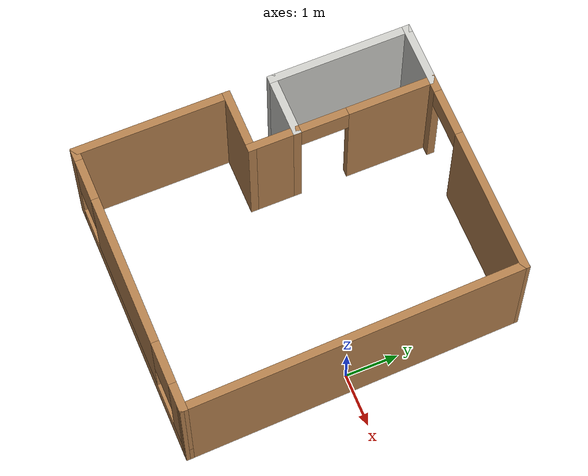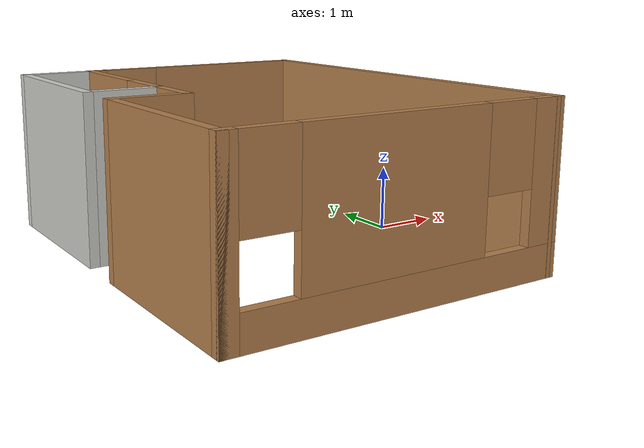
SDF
<?xml version='1.0'?>
<sdf version='1.7'>
  <model name='house'>
    <pose>-2.24196 0.03349 0 0 -0 0</pose>
    <link name='Wall_31'>
      <collision name='Wall_31_Collision'>
        <geometry>
          <box>
            <size>1.25 0.15 2.5</size>
          </box>
        </geometry>
        <pose>0 0 1.25 0 -0 0</pose>
      </collision>
      <visual name='Wall_31_Visual'>
        <pose>0 0 1.25 0 -0 0</pose>
        <geometry>
          <box>
            <size>1.25 0.15 2.5</size>
          </box>
        </geometry>
        <material>
          <script>
            <uri>file://media/materials/scripts/gazebo.material</uri>
            <name>Gazebo/CeilingTiled</name>
          </script>
          <ambient>1 1 1 1</ambient>
        </material>
        <meta>
          <layer>0</layer>
        </meta>
      </visual>
      <pose>-2.00088 3.15 0 0 -0 3.14159</pose>
    </link>
    <link name='Wall_32'>
      <collision name='Wall_32_Collision'>
        <geometry>
          <box>
            <size>2.75 0.15 2.5</size>
          </box>
        </geometry>
        <pose>0 0 1.25 0 -0 0</pose>
      </collision>
      <visual name='Wall_32_Visual'>
        <pose>0 0 1.25 0 -0 0</pose>
        <geometry>
          <box>
            <size>2.75 0.15 2.5</size>
          </box>
        </geometry>
        <material>
          <script>
            <uri>file://media/materials/scripts/gazebo.material</uri>
            <name>Gazebo/CeilingTiled</name>
          </script>
          <ambient>1 1 1 1</ambient>
        </material>
        <meta>
          <layer>0</layer>
        </meta>
      </visual>
      <pose>-2.55088 1.85 0 0 -0 -1.5708</pose>
    </link>
    <link name='Wall_33'>
      <collision name='Wall_33_Collision'>
        <geometry>
          <box>
            <size>1.25 0.15 2.5</size>
          </box>
        </geometry>
        <pose>0 0 1.25 0 -0 0</pose>
      </collision>
      <visual name='Wall_33_Visual'>
        <pose>0 0 1.25 0 -0 0</pose>
        <geometry>
          <box>
            <size>1.25 0.15 2.5</size>
          </box>
        </geometry>
        <material>
          <script>
            <uri>file://media/materials/scripts/gazebo.material</uri>
            <name>Gazebo/CeilingTiled</name>
          </script>
          <ambient>1 1 1 1</ambient>
        </material>
        <meta>
          <layer>0</layer>
        </meta>
      </visual>
      <pose>-2.00088 0.55 0 0 -0 0</pose>
    </link>
    <link name='Wall_34'>
      <collision name='Wall_34_Collision'>
        <geometry>
          <box>
            <size>1 0.15 2.5</size>
          </box>
        </geometry>
        <pose>0 0 1.25 0 -0 0</pose>
      </collision>
      <visual name='Wall_34_Visual'>
        <pose>0 0 1.25 0 -0 0</pose>
        <geometry>
          <box>
            <size>1 0.15 2.5</size>
          </box>
        </geometry>
        <material>
          <script>
            <uri>file://media/materials/scripts/gazebo.material</uri>
            <name>Gazebo/Wood</name>
          </script>
          <ambient>1 1 1 1</ambient>
        </material>
        <meta>
          <layer>0</layer>
        </meta>
      </visual>
      <pose>-1.45088 0.125 0 0 -0 -1.5708</pose>
    </link>
    <link name='Wall_35'>
      <collision name='Wall_35_Collision'>
        <geometry>
          <box>
            <size>1.25 0.15 2.5</size>
          </box>
        </geometry>
        <pose>0 0 1.25 0 -0 0</pose>
      </collision>
      <visual name='Wall_35_Visual'>
        <pose>0 0 1.25 0 -0 0</pose>
        <geometry>
          <box>
            <size>1.25 0.15 2.5</size>
          </box>
        </geometry>
        <material>
          <script>
            <uri>file://media/materials/scripts/gazebo.material</uri>
            <name>Gazebo/Wood</name>
          </script>
          <ambient>1 1 1 1</ambient>
        </material>
        <meta>
          <layer>0</layer>
        </meta>
      </visual>
      <pose>-2.00088 -0.3 0 0 -0 3.14159</pose>
    </link>
    <link name='Wall_37'>
      <collision name='Wall_37_Collision'>
        <geometry>
          <box>
            <size>3 0.15 2.5</size>
          </box>
        </geometry>
        <pose>0 0 1.25 0 -0 0</pose>
      </collision>
      <visual name='Wall_37_Visual'>
        <pose>0 0 1.25 0 -0 0</pose>
        <geometry>
          <box>
            <size>3 0.15 2.5</size>
          </box>
        </geometry>
        <material>
          <script>
            <uri>file://media/materials/scripts/gazebo.material</uri>
            <name>Gazebo/Wood</name>
          </script>
          <ambient>1 1 1 1</ambient>
        </material>
        <meta>
          <layer>0</layer>
        </meta>
      </visual>
      <pose>-2.55088 -1.725 0 0 -0 -1.5708</pose>
    </link>
    <link name='Wall_47'>
      <pose>-0.000882 -3.15 0 0 -0 0</pose>
      <visual name='Wall_47_Visual_0'>
        <pose>-2.49434 0 1.25 0 -0 0</pose>
        <geometry>
          <box>
            <size>0.261327 0.15 2.5</size>
          </box>
        </geometry>
        <material>
          <script>
            <uri>file://media/materials/scripts/gazebo.material</uri>
            <name>Gazebo/Wood</name>
          </script>
          <ambient>1 1 1 1</ambient>
        </material>
        <meta>
          <layer>0</layer>
        </meta>
      </visual>
      <collision name='Wall_47_Collision_0'>
        <geometry>
          <box>
            <size>0.261327 0.15 2.5</size>
          </box>
        </geometry>
        <pose>-2.49434 0 1.25 0 -0 0</pose>
      </collision>
      <visual name='Wall_47_Visual_1'>
        <pose>0.130664 0 0.25 0 -0 0</pose>
        <geometry>
          <box>
            <size>4.98867 0.15 0.5</size>
          </box>
        </geometry>
        <material>
          <script>
            <uri>file://media/materials/scripts/gazebo.material</uri>
            <name>Gazebo/Wood</name>
          </script>
          <ambient>1 1 1 1</ambient>
        </material>
        <meta>
          <layer>0</layer>
        </meta>
      </visual>
      <collision name='Wall_47_Collision_1'>
        <geometry>
          <box>
            <size>4.98867 0.15 0.5</size>
          </box>
        </geometry>
        <pose>0.130664 0 0.25 0 -0 0</pose>
      </collision>
      <visual name='Wall_47_Visual_2'>
        <pose>-0.135961 0 1.5 0 -0 0</pose>
        <geometry>
          <box>
            <size>2.85542 0.15 2</size>
          </box>
        </geometry>
        <material>
          <script>
            <uri>file://media/materials/scripts/gazebo.material</uri>
            <name>Gazebo/Wood</name>
          </script>
          <ambient>1 1 1 1</ambient>
        </material>
        <meta>
          <layer>0</layer>
        </meta>
      </visual>
      <collision name='Wall_47_Collision_2'>
        <geometry>
          <box>
            <size>2.85542 0.15 2</size>
          </box>
        </geometry>
        <pose>-0.135961 0 1.5 0 -0 0</pose>
      </collision>
      <visual name='Wall_47_Visual_3'>
        <pose>2.35838 0 1.5 0 -0 0</pose>
        <geometry>
          <box>
            <size>0.533249 0.15 2</size>
          </box>
        </geometry>
        <material>
          <script>
            <uri>file://media/materials/scripts/gazebo.material</uri>
            <name>Gazebo/Wood</name>
          </script>
          <ambient>1 1 1 1</ambient>
        </material>
        <meta>
          <layer>0</layer>
        </meta>
      </visual>
      <collision name='Wall_47_Collision_3'>
        <geometry>
          <box>
            <size>0.533249 0.15 2</size>
          </box>
        </geometry>
        <pose>2.35838 0 1.5 0 -0 0</pose>
      </collision>
      <visual name='Wall_47_Visual_4'>
        <pose>-1.96367 0 1.9 0 -0 0</pose>
        <geometry>
          <box>
            <size>0.8 0.15 1.2</size>
          </box>
        </geometry>
        <material>
          <script>
            <uri>file://media/materials/scripts/gazebo.material</uri>
            <name>Gazebo/Wood</name>
          </script>
          <ambient>1 1 1 1</ambient>
        </material>
        <meta>
          <layer>0</layer>
        </meta>
      </visual>
      <collision name='Wall_47_Collision_4'>
        <geometry>
          <box>
            <size>0.8 0.15 1.2</size>
          </box>
        </geometry>
        <pose>-1.96367 0 1.9 0 -0 0</pose>
      </collision>
      <visual name='Wall_47_Visual_5'>
        <pose>1.69175 0 1.9 0 -0 0</pose>
        <geometry>
          <box>
            <size>0.8 0.15 1.2</size>
          </box>
        </geometry>
        <material>
          <script>
            <uri>file://media/materials/scripts/gazebo.material</uri>
            <name>Gazebo/Wood</name>
          </script>
          <ambient>1 1 1 1</ambient>
        </material>
        <meta>
          <layer>0</layer>
        </meta>
      </visual>
      <collision name='Wall_47_Collision_5'>
        <geometry>
          <box>
            <size>0.8 0.15 1.2</size>
          </box>
        </geometry>
        <pose>1.69175 0 1.9 0 -0 0</pose>
      </collision>
    </link>
    <link name='Wall_52'>
      <pose>0.474118 3.15 0 0 -0 0</pose>
      <visual name='Wall_52_Visual_0'>
        <pose>-1.84093 0 1.25 0 -0 0</pose>
        <geometry>
          <box>
            <size>0.318142 0.15 2.5</size>
          </box>
        </geometry>
        <material>
          <script>
            <uri>file://media/materials/scripts/gazebo.material</uri>
            <name>Gazebo/Wood</name>
          </script>
          <ambient>1 1 1 1</ambient>
        </material>
        <meta>
          <layer>0</layer>
        </meta>
      </visual>
      <collision name='Wall_52_Collision_0'>
        <geometry>
          <box>
            <size>0.318142 0.15 2.5</size>
          </box>
        </geometry>
        <pose>-1.84093 0 1.25 0 -0 0</pose>
      </collision>
      <visual name='Wall_52_Visual_1'>
        <pose>0.609071 0 1.25 0 -0 0</pose>
        <geometry>
          <box>
            <size>2.78186 0.15 2.5</size>
          </box>
        </geometry>
        <material>
          <script>
            <uri>file://media/materials/scripts/gazebo.material</uri>
            <name>Gazebo/Wood</name>
          </script>
          <ambient>1 1 1 1</ambient>
        </material>
        <meta>
          <layer>0</layer>
        </meta>
      </visual>
      <collision name='Wall_52_Collision_1'>
        <geometry>
          <box>
            <size>2.78186 0.15 2.5</size>
          </box>
        </geometry>
        <pose>0.609071 0 1.25 0 -0 0</pose>
      </collision>
      <visual name='Wall_52_Visual_2'>
        <pose>-1.23186 0 2.25 0 -0 0</pose>
        <geometry>
          <box>
            <size>0.9 0.15 0.5</size>
          </box>
        </geometry>
        <material>
          <script>
            <uri>file://media/materials/scripts/gazebo.material</uri>
            <name>Gazebo/Wood</name>
          </script>
          <ambient>1 1 1 1</ambient>
        </material>
        <meta>
          <layer>0</layer>
        </meta>
      </visual>
      <collision name='Wall_52_Collision_2'>
        <geometry>
          <box>
            <size>0.9 0.15 0.5</size>
          </box>
        </geometry>
        <pose>-1.23186 0 2.25 0 -0 0</pose>
      </collision>
    </link>
    <link name='Wall_53'>
      <collision name='Wall_53_Collision'>
        <geometry>
          <box>
            <size>6.45179 0.15 2.5</size>
          </box>
        </geometry>
        <pose>0 0 1.25 0 -0 0</pose>
      </collision>
      <visual name='Wall_53_Visual'>
        <pose>0 0 1.25 0 -0 0</pose>
        <geometry>
          <box>
            <size>6.45179 0.15 2.5</size>
          </box>
        </geometry>
        <material>
          <script>
            <uri>file://media/materials/scripts/gazebo.material</uri>
            <name>Gazebo/Wood</name>
          </script>
          <ambient>1 1 1 1</ambient>
        </material>
        <meta>
          <layer>0</layer>
        </meta>
      </visual>
      <pose>2.47412 0 0 0 -0 -1.54699</pose>
    </link>
    <link name='Wall_61'>
      <pose>-1.45088 1.85 0 0 -0 1.5708</pose>
      <visual name='Wall_61_Visual_0'>
        <pose>-1.3007 0 1.25 0 -0 0</pose>
        <geometry>
          <box>
            <size>0.148601 0.15 2.5</size>
          </box>
        </geometry>
        <material>
          <script>
            <uri>file://media/materials/scripts/gazebo.material</uri>
            <name>Gazebo/Wood</name>
          </script>
          <ambient>1 1 1 1</ambient>
        </material>
        <meta>
          <layer>0</layer>
        </meta>
      </visual>
      <collision name='Wall_61_Collision_0'>
        <geometry>
          <box>
            <size>0.148601 0.15 2.5</size>
          </box>
        </geometry>
        <pose>-1.3007 0 1.25 0 -0 0</pose>
      </collision>
      <visual name='Wall_61_Visual_1'>
        <pose>0.524301 0 1.25 0 -0 0</pose>
        <geometry>
          <box>
            <size>1.7014 0.15 2.5</size>
          </box>
        </geometry>
        <material>
          <script>
            <uri>file://media/materials/scripts/gazebo.material</uri>
            <name>Gazebo/Wood</name>
          </script>
          <ambient>1 1 1 1</ambient>
        </material>
        <meta>
          <layer>0</layer>
        </meta>
      </visual>
      <collision name='Wall_61_Collision_1'>
        <geometry>
          <box>
            <size>1.7014 0.15 2.5</size>
          </box>
        </geometry>
        <pose>0.524301 0 1.25 0 -0 0</pose>
      </collision>
      <visual name='Wall_61_Visual_2'>
        <pose>-0.776399 0 2.25 0 -0 0</pose>
        <geometry>
          <box>
            <size>0.9 0.15 0.5</size>
          </box>
        </geometry>
        <material>
          <script>
            <uri>file://media/materials/scripts/gazebo.material</uri>
            <name>Gazebo/Wood</name>
          </script>
          <ambient>1 1 1 1</ambient>
        </material>
        <meta>
          <layer>0</layer>
        </meta>
      </visual>
      <collision name='Wall_61_Collision_2'>
        <geometry>
          <box>
            <size>0.9 0.15 0.5</size>
          </box>
        </geometry>
        <pose>-0.776399 0 2.25 0 -0 0</pose>
      </collision>
    </link>
    <static>1</static>
  </model>
</sdf>
